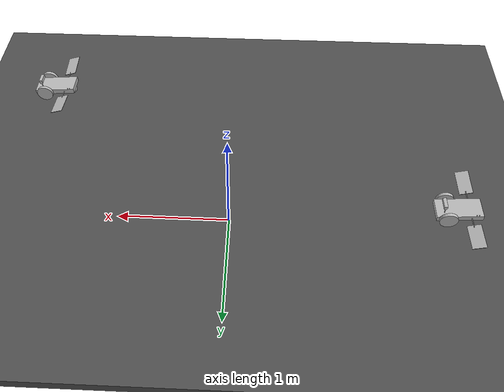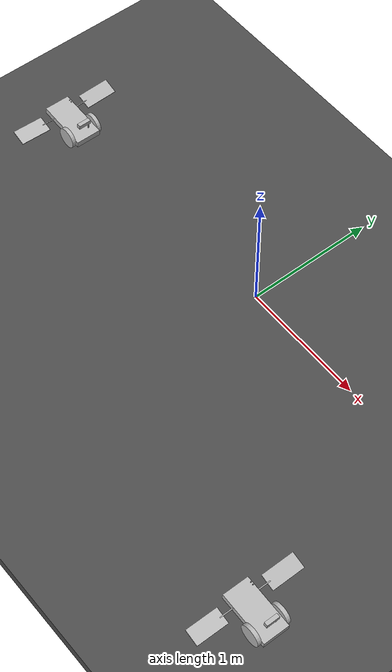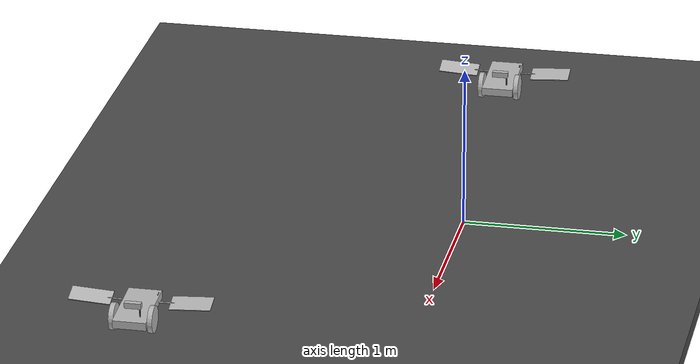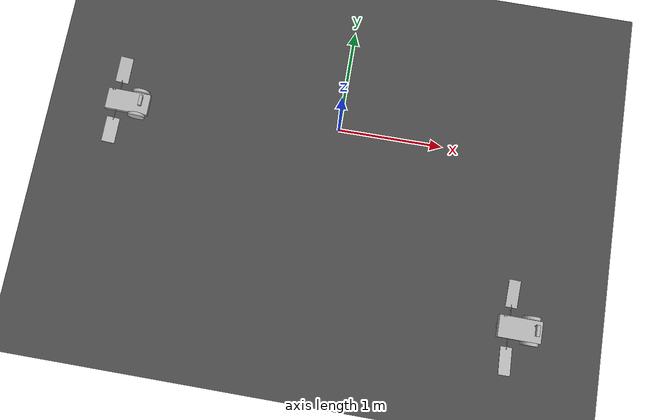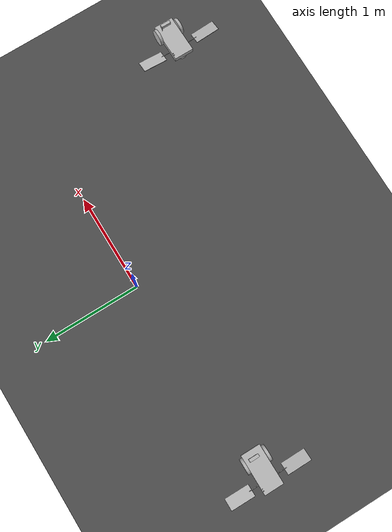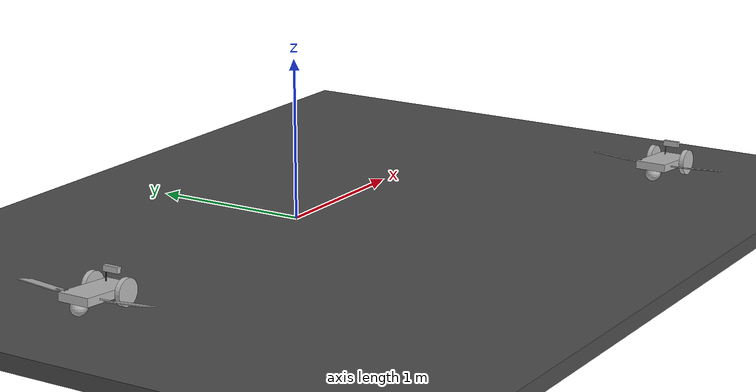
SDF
<sdf version="1.6">
 <world name="default">
  <model name="ground_plane">
   <static>1</static>
   <link name="link">
    <collision name="collision">
     <geometry><plane><normal>0 0 1</normal><size>100 100</size></plane></geometry>
     <surface>
      <contact><collide_bitmask>65535</collide_bitmask></contact>
      <friction><ode><mu>100</mu><mu2>50</mu2></ode></friction>
     </surface>
    </collision>
    <visual name="visual">
     <cast_shadows>0</cast_shadows>
     <geometry><plane><normal>0 0 1</normal><size>100 100</size></plane></geometry>
     <material>
      <script><uri>file://media/materials/scripts/gazebo.material</uri><name>Gazebo/Grey</name></script>
     </material>
    </visual>
   </link>
  </model>
  <model name="asphalt_plane">
   <static>1</static>
   <link name="link">
    <collision name="collision"><geometry><box><size>20 20 0.1</size></box></geometry></collision>
    <visual name="visual">
     <cast_shadows>0</cast_shadows>
     <geometry><box><size>20 20 0.1</size></box></geometry>
     <material>
      <script>
       <uri>model://asphalt_plane/materials/scripts</uri>
       <uri>model://asphalt_plane/materials/textures</uri>
       <name>vrc/asphalt</name>
      </script>
     </material>
    </visual>
   </link>
   <pose>0.036625 -0.045084 0 0 -0 0</pose>
  </model>
  <model name="my_robot_0">
   <static>0</static>
   <link name="chassis">
    <pose>0 0 0.1 0 -0 0</pose>
    <collision name="collision"><geometry><box><size>0.4 0.2 0.05</size></box></geometry></collision>
    <visual name="solar_panel_L">
     <pose>-0.1 0.3 0.01 0.07 0.21 0</pose>
     <geometry><box><size>0.12 0.25 0.005</size></box></geometry>
     <material>
      <script>
       <uri>model://tuc_robot_v1/materials/scripts</uri>
       <uri>model://tuc_robot_v1/materials/textures</uri>
       <name>Panel/Normal</name>
      </script>
     </material>
    </visual>
    <visual name="solar_panel_bracket_L">
     <pose>-0.1 0.15 0.002 -1.55 0 0</pose>
     <geometry><cylinder><radius>0.004</radius><length>0.1</length></cylinder></geometry>
    </visual>
    <visual name="visual">
     <geometry><box><size>0.4 0.2 0.05</size></box></geometry>
     <material>
      <script>
       <uri>model://tuc_robot_v1/materials/scripts</uri>
       <uri>model://tuc_robot_v1/materials/textures</uri>
       <name>Rover/Normal</name>
      </script>
     </material>
    </visual>
    <visual name="solar_panel_bracket_R">
     <pose>-0.1 -0.15 0.002 1.55 -0 0</pose>
     <geometry><cylinder><radius>0.004</radius><length>0.1</length></cylinder></geometry>
    </visual>
    <visual name="solar_panel_R">
     <pose>-0.1 -0.3 0.01 -0.07 0.21 -0</pose>
     <geometry><box><size>0.12 0.25 0.005</size></box></geometry>
     <material>
      <script>
       <uri>model://tuc_robot_v1/materials/scripts</uri>
       <uri>model://tuc_robot_v1/materials/textures</uri>
       <name>Panel/Normal</name>
      </script>
     </material>
    </visual>
    <visual name="camera_bracket">
     <pose>0.13 0.05 0.05 0 -0 0</pose>
     <geometry><cylinder><radius>0.004</radius><length>0.1</length></cylinder></geometry>
     <material>
      <ambient>0.8 0.8 0.8 1</ambient>
      <diffuse>0 0 0 1</diffuse>
      <specular>0 0 0 1</specular>
      <emissive>0 0 0 1</emissive>
     </material>
    </visual>
    <visual name="camera">
     <pose>0.13 0.01 0.1 0 -0 0</pose>
     <geometry><box><size>0.03 0.1 0.035</size></box></geometry>
     <material>
      <script>
       <uri>model://tuc_robot_v1/materials/scripts</uri>
       <uri>model://tuc_robot_v1/materials/textures</uri>
       <name>Camera/Normal</name>
      </script>
     </material>
    </visual>
    <visual name="indexer_2">
     <pose>-0.14 0.09 0.02 0 -0 0</pose>
     <geometry><cylinder><radius>0.004</radius><length>0.02</length></cylinder></geometry>
     <material>
      <ambient>0 0 0 1</ambient>
      <diffuse>0 0 0 1</diffuse>
      <specular>0 0 0 1</specular>
      <emissive>1 1 0 1</emissive>
     </material>
    </visual>
    <visual name="indexer_1">
     <pose>-0.16 0.09 0.02 0 -0 0</pose>
     <geometry><cylinder><radius>0.004</radius><length>0.02</length></cylinder></geometry>
     <material>
      <ambient>0 0 0 1</ambient>
      <diffuse>0 0 0 1</diffuse>
      <specular>0 0 0 1</specular>
      <emissive>0 1 0 1</emissive>
     </material>
    </visual>
    <collision name="caster_collision">
     <pose>-0.15 0 -0.05 0 -0 0</pose>
     <geometry><sphere><radius>0.05</radius></sphere></geometry>
     <surface><friction><ode><mu>0</mu><mu2>0</mu2><slip1>1</slip1><slip2>1</slip2></ode></friction></surface>
    </collision>
    <visual name="caster_visual">
     <pose>-0.15 0 -0.05 0 -0 0</pose>
     <geometry><sphere><radius>0.05</radius></sphere></geometry>
     <material>
      <script>
       <uri>model://tuc_robot_v1/materials/scripts</uri>
       <uri>model://tuc_robot_v1/materials/textures</uri>
       <name>Wheel/Normal</name>
      </script>
     </material>
    </visual>
    <inertial>
     <inertia><ixx>1</ixx><ixy>0</ixy><ixz>0</ixz><iyy>1</iyy><iyz>0</iyz><izz>1</izz></inertia>
     <mass>1</mass>
    </inertial>
   </link>
   <link name="left_wheel">
    <pose>0.1 0.115 0.1 -0 1.5707 1.5707</pose>
    <collision name="collision">
     <geometry><cylinder><radius>0.08</radius><length>0.03</length></cylinder></geometry>
    </collision>
    <visual name="visual">
     <geometry><cylinder><radius>0.08</radius><length>0.03</length></cylinder></geometry>
     <material>
      <script>
       <uri>model://tuc_robot_v1/materials/scripts</uri>
       <uri>model://tuc_robot_v1/materials/textures</uri>
       <name>Wheel/Normal</name>
      </script>
     </material>
    </visual>
    <inertial>
     <inertia><ixx>1</ixx><ixy>0</ixy><ixz>0</ixz><iyy>1</iyy><iyz>0</iyz><izz>1</izz></inertia>
     <mass>1</mass>
    </inertial>
   </link>
   <link name="right_wheel">
    <pose>0.1 -0.115 0.1 -0 1.5707 1.5707</pose>
    <collision name="collision">
     <geometry><cylinder><radius>0.08</radius><length>0.03</length></cylinder></geometry>
    </collision>
    <visual name="visual">
     <geometry><cylinder><radius>0.08</radius><length>0.03</length></cylinder></geometry>
     <material>
      <script>
       <uri>model://tuc_robot_v1/materials/scripts</uri>
       <uri>model://tuc_robot_v1/materials/textures</uri>
       <name>Wheel/Normal</name>
      </script>
     </material>
    </visual>
    <inertial>
     <inertia><ixx>1</ixx><ixy>0</ixy><ixz>0</ixz><iyy>1</iyy><iyz>0</iyz><izz>1</izz></inertia>
     <mass>1</mass>
    </inertial>
   </link>
   <joint name="left_wheel_hinge" type="revolute">
    <pose>0 0 -0.03 0 -0 0</pose>
    <child>left_wheel</child>
    <parent>chassis</parent>
    <axis>
     <xyz>0 1 0</xyz>
     <use_parent_model_frame>1</use_parent_model_frame>
     <limit><lower>-1e+16</lower><upper>1e+16</upper></limit>
     <dynamics><spring_reference>0</spring_reference><spring_stiffness>0</spring_stiffness></dynamics>
    </axis>
   </joint>
   <joint name="right_wheel_hinge" type="revolute">
    <pose>0 0 0.03 0 -0 0</pose>
    <child>right_wheel</child>
    <parent>chassis</parent>
    <axis>
     <xyz>0 1 0</xyz>
     <use_parent_model_frame>1</use_parent_model_frame>
     <limit><lower>-1e+16</lower><upper>1e+16</upper></limit>
     <dynamics><spring_reference>0</spring_reference><spring_stiffness>0</spring_stiffness></dynamics>
    </axis>
   </joint>
   <pose>1.89671 -1.58223 0.038253 -3e-06 0.079449 -0.002113</pose>
  </model>
  <model name="my_robot_3">
   <static>0</static>
   <link name="chassis">
    <pose>0 0 0.1 0 -0 0</pose>
    <collision name="collision"><geometry><box><size>0.4 0.2 0.05</size></box></geometry></collision>
    <visual name="solar_panel_L">
     <pose>-0.1 0.3 0.01 0.07 0.21 0</pose>
     <geometry><box><size>0.12 0.25 0.005</size></box></geometry>
     <material>
      <script>
       <uri>model://tuc_robot_v1/materials/scripts</uri>
       <uri>model://tuc_robot_v1/materials/textures</uri>
       <name>Panel/Normal</name>
      </script>
     </material>
    </visual>
    <visual name="solar_panel_bracket_L">
     <pose>-0.1 0.15 0.002 -1.55 0 0</pose>
     <geometry><cylinder><radius>0.004</radius><length>0.1</length></cylinder></geometry>
    </visual>
    <visual name="visual">
     <geometry><box><size>0.4 0.2 0.05</size></box></geometry>
     <material>
      <script>
       <uri>model://tuc_robot_v1/materials/scripts</uri>
       <uri>model://tuc_robot_v1/materials/textures</uri>
       <name>Rover/Normal</name>
      </script>
     </material>
    </visual>
    <visual name="solar_panel_bracket_R">
     <pose>-0.1 -0.15 0.002 1.55 -0 0</pose>
     <geometry><cylinder><radius>0.004</radius><length>0.1</length></cylinder></geometry>
    </visual>
    <visual name="solar_panel_R">
     <pose>-0.1 -0.3 0.01 -0.07 0.21 -0</pose>
     <geometry><box><size>0.12 0.25 0.005</size></box></geometry>
     <material>
      <script>
       <uri>model://tuc_robot_v1/materials/scripts</uri>
       <uri>model://tuc_robot_v1/materials/textures</uri>
       <name>Panel/Normal</name>
      </script>
     </material>
    </visual>
    <visual name="camera_bracket">
     <pose>0.13 0.05 0.05 0 -0 0</pose>
     <geometry><cylinder><radius>0.004</radius><length>0.1</length></cylinder></geometry>
     <material>
      <ambient>0.8 0.8 0.8 1</ambient>
      <diffuse>0 0 0 1</diffuse>
      <specular>0 0 0 1</specular>
      <emissive>0 0 0 1</emissive>
     </material>
    </visual>
    <visual name="camera">
     <pose>0.13 0.01 0.1 0 -0 0</pose>
     <geometry><box><size>0.03 0.1 0.035</size></box></geometry>
     <material>
      <script>
       <uri>model://tuc_robot_v1/materials/scripts</uri>
       <uri>model://tuc_robot_v1/materials/textures</uri>
       <name>Camera/Normal</name>
      </script>
     </material>
    </visual>
    <visual name="indexer_2">
     <pose>-0.14 0.09 0.02 0 -0 0</pose>
     <geometry><cylinder><radius>0.004</radius><length>0.02</length></cylinder></geometry>
     <material>
      <ambient>0 0 0 1</ambient>
      <diffuse>0 0 0 1</diffuse>
      <specular>0 0 0 1</specular>
      <emissive>1 1 0 1</emissive>
     </material>
    </visual>
    <visual name="indexer_1">
     <pose>-0.16 0.09 0.02 0 -0 0</pose>
     <geometry><cylinder><radius>0.004</radius><length>0.02</length></cylinder></geometry>
     <material>
      <ambient>0 0 0 1</ambient>
      <diffuse>0 0 0 1</diffuse>
      <specular>0 0 0 1</specular>
      <emissive>0 1 0 1</emissive>
     </material>
    </visual>
    <collision name="caster_collision">
     <pose>-0.15 0 -0.05 0 -0 0</pose>
     <geometry><sphere><radius>0.05</radius></sphere></geometry>
     <surface><friction><ode><mu>0</mu><mu2>0</mu2><slip1>1</slip1><slip2>1</slip2></ode></friction></surface>
    </collision>
    <visual name="caster_visual">
     <pose>-0.15 0 -0.05 0 -0 0</pose>
     <geometry><sphere><radius>0.05</radius></sphere></geometry>
     <material>
      <script>
       <uri>model://tuc_robot_v1/materials/scripts</uri>
       <uri>model://tuc_robot_v1/materials/textures</uri>
       <name>Wheel/Normal</name>
      </script>
     </material>
    </visual>
    <inertial>
     <inertia><ixx>1</ixx><ixy>0</ixy><ixz>0</ixz><iyy>1</iyy><iyz>0</iyz><izz>1</izz></inertia>
     <mass>1</mass>
    </inertial>
   </link>
   <link name="left_wheel">
    <pose>0.1 0.115 0.1 -0 1.5707 1.5707</pose>
    <collision name="collision">
     <geometry><cylinder><radius>0.08</radius><length>0.03</length></cylinder></geometry>
    </collision>
    <visual name="visual">
     <geometry><cylinder><radius>0.08</radius><length>0.03</length></cylinder></geometry>
     <material>
      <script>
       <uri>model://tuc_robot_v1/materials/scripts</uri>
       <uri>model://tuc_robot_v1/materials/textures</uri>
       <name>Wheel/Normal</name>
      </script>
     </material>
    </visual>
    <inertial>
     <inertia><ixx>1</ixx><ixy>0</ixy><ixz>0</ixz><iyy>1</iyy><iyz>0</iyz><izz>1</izz></inertia>
     <mass>1</mass>
    </inertial>
   </link>
   <link name="right_wheel">
    <pose>0.1 -0.115 0.1 -0 1.5707 1.5707</pose>
    <collision name="collision">
     <geometry><cylinder><radius>0.08</radius><length>0.03</length></cylinder></geometry>
    </collision>
    <visual name="visual">
     <geometry><cylinder><radius>0.08</radius><length>0.03</length></cylinder></geometry>
     <material>
      <script>
       <uri>model://tuc_robot_v1/materials/scripts</uri>
       <uri>model://tuc_robot_v1/materials/textures</uri>
       <name>Wheel/Normal</name>
      </script>
     </material>
    </visual>
    <inertial>
     <inertia><ixx>1</ixx><ixy>0</ixy><ixz>0</ixz><iyy>1</iyy><iyz>0</iyz><izz>1</izz></inertia>
     <mass>1</mass>
    </inertial>
   </link>
   <joint name="left_wheel_hinge" type="revolute">
    <pose>0 0 -0.03 0 -0 0</pose>
    <child>left_wheel</child>
    <parent>chassis</parent>
    <axis>
     <xyz>0 1 0</xyz>
     <use_parent_model_frame>1</use_parent_model_frame>
     <limit><lower>-1e+16</lower><upper>1e+16</upper></limit>
     <dynamics><spring_reference>0</spring_reference><spring_stiffness>0</spring_stiffness></dynamics>
    </axis>
   </joint>
   <joint name="right_wheel_hinge" type="revolute">
    <pose>0 0 0.03 0 -0 0</pose>
    <child>right_wheel</child>
    <parent>chassis</parent>
    <axis>
     <xyz>0 1 0</xyz>
     <use_parent_model_frame>1</use_parent_model_frame>
     <limit><lower>-1e+16</lower><upper>1e+16</upper></limit>
     <dynamics><spring_reference>0</spring_reference><spring_stiffness>0</spring_stiffness></dynamics>
    </axis>
   </joint>
   <pose>-2.0321 -0.107076 0.038254 -7e-06 0.079453 -0.000781</pose>
  </model>
 </world>
</sdf>
